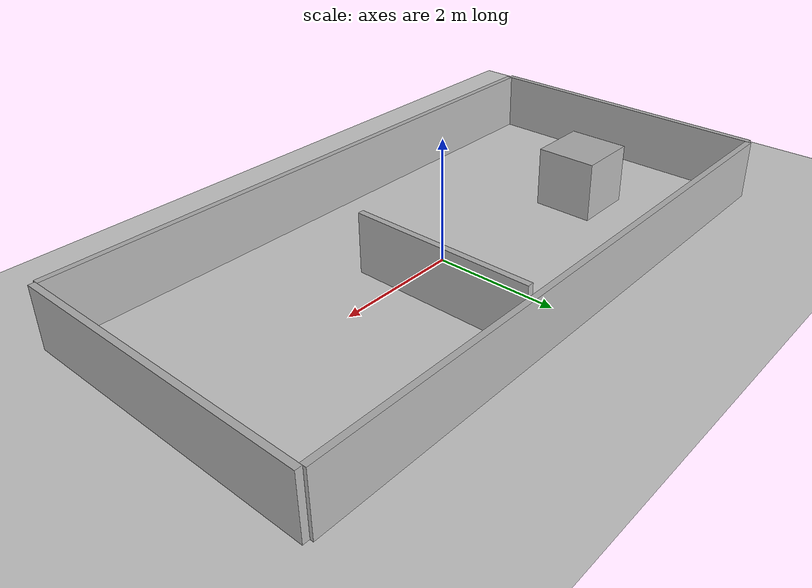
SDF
<sdf version='1.10'>
  <world name='empty'>
    <physics name='1ms' type='ignored'>
      <max_step_size>0.001</max_step_size>
      <real_time_factor>1</real_time_factor>
      <real_time_update_rate>1000</real_time_update_rate>
    </physics>
    <plugin name='gz::sim::systems::Physics' filename='gz-sim-physics-system'/>
    <plugin name='gz::sim::systems::UserCommands' filename='gz-sim-user-commands-system'/>
    <plugin name='gz::sim::systems::SceneBroadcaster' filename='gz-sim-scene-broadcaster-system'/>
    <plugin name='gz::sim::systems::Contact' filename='gz-sim-contact-system'/>
    <gravity>0 0 -9.8000000000000007</gravity>
    <magnetic_field>5.5644999999999998e-06 2.2875799999999999e-05 -4.2388400000000002e-05</magnetic_field>
    <atmosphere type='adiabatic'/>
    <scene>
      <ambient>0.400000006 0.400000006 0.400000006 1</ambient>
      <background>0.699999988 0.699999988 0.699999988 1</background>
      <shadows>true</shadows>
    </scene>
    <model name='ground_plane'>
      <static>true</static>
      <link name='link'>
        <collision name='collision'>
          <geometry>
            <plane>
              <normal>0 0 1</normal>
              <size>100 100</size>
            </plane>
          </geometry>
          <surface>
            <friction>
              <ode/>
            </friction>
            <bounce/>
            <contact/>
          </surface>
        </collision>
        <visual name='visual'>
          <geometry>
            <plane>
              <normal>0 0 1</normal>
              <size>100 100</size>
            </plane>
          </geometry>
          <material>
            <ambient>0.800000012 0.800000012 0.800000012 1</ambient>
            <diffuse>0.800000012 0.800000012 0.800000012 1</diffuse>
            <specular>0.800000012 0.800000012 0.800000012 1</specular>
          </material>
        </visual>
        <pose>0 0 0 0 0 0</pose>
        <inertial>
          <pose>0 0 0 0 0 0</pose>
          <mass>1</mass>
          <inertia>
            <ixx>1</ixx>
            <ixy>0</ixy>
            <ixz>0</ixz>
            <iyy>1</iyy>
            <iyz>0</iyz>
            <izz>1</izz>
          </inertia>
        </inertial>
        <enable_wind>false</enable_wind>
      </link>
      <pose>0 0 0 0 0 0</pose>
      <self_collide>false</self_collide>
    </model>
    <model name='box'>
      <pose>5.0500000000010461 2.2053114041676303e-16 0.49999990563458024 9.230017262243982e-16 2.26868419109952e-12 -4.4742359625154709e-17</pose>
      <link name='box_link'>
        <inertial>
          <inertia>
            <ixx>0.16666</ixx>
            <ixy>0</ixy>
            <ixz>0</ixz>
            <iyy>0.16666</iyy>
            <iyz>0</iyz>
            <izz>0.16666</izz>
          </inertia>
          <mass>1</mass>
          <pose>0 0 0 0 0 0</pose>
        </inertial>
        <collision name='box_collision'>
          <geometry>
            <box>
              <size>0.10000000000000001 5 1</size>
            </box>
          </geometry>
          <surface>
            <friction>
              <ode/>
            </friction>
            <bounce/>
            <contact/>
          </surface>
        </collision>
        <visual name='box_visual'>
          <geometry>
            <box>
              <size>0.10000000000000001 5 1</size>
            </box>
          </geometry>
          <material>
            <ambient>0.300000012 0.300000012 0.300000012 1</ambient>
            <diffuse>0.699999988 0.699999988 0.699999988 1</diffuse>
            <specular>1 1 1 1</specular>
          </material>
        </visual>
        <pose>0 0 0 0 0 0</pose>
        <enable_wind>false</enable_wind>
      </link>
      <static>false</static>
      <self_collide>false</self_collide>
    </model>
    <model name='box_0'>
      <pose>-5.0500000000010257 1.9308619367183795e-16 0.4999999056345818 -1.312018680210056e-16 -2.2350246798462131e-12 -5.2412035890119499e-17</pose>
      <link name='box_link'>
        <inertial>
          <inertia>
            <ixx>0.16666</ixx>
            <ixy>0</ixy>
            <ixz>0</ixz>
            <iyy>0.16666</iyy>
            <iyz>0</iyz>
            <izz>0.16666</izz>
          </inertia>
          <mass>1</mass>
          <pose>0 0 0 0 0 0</pose>
        </inertial>
        <collision name='box_collision'>
          <geometry>
            <box>
              <size>0.10000000000000001 5 1</size>
            </box>
          </geometry>
          <surface>
            <friction>
              <ode/>
            </friction>
            <bounce/>
            <contact/>
          </surface>
        </collision>
        <visual name='box_visual'>
          <geometry>
            <box>
              <size>0.10000000000000001 5 1</size>
            </box>
          </geometry>
          <material>
            <ambient>0.300000012 0.300000012 0.300000012 1</ambient>
            <diffuse>0.699999988 0.699999988 0.699999988 1</diffuse>
            <specular>1 1 1 1</specular>
          </material>
        </visual>
        <pose>0 0 0 0 0 0</pose>
        <enable_wind>false</enable_wind>
      </link>
      <static>false</static>
      <self_collide>false</self_collide>
    </model>
    <model name='box_1'>
      <pose>-4.4394350890997407e-16 2.5026397133030489 0.4999996299985689 -2.2515448170908902e-12 -4.2425859993624924e-15 9.857753932318488e-16</pose>
      <link name='box_link'>
        <inertial>
          <inertia>
            <ixx>0.16666</ixx>
            <ixy>0</ixy>
            <ixz>0</ixz>
            <iyy>0.16666</iyy>
            <iyz>0</iyz>
            <izz>0.16666</izz>
          </inertia>
          <mass>1</mass>
          <pose>0 0 0 0 0 0</pose>
        </inertial>
        <collision name='box_collision'>
          <geometry>
            <box>
              <size>10 0.10000000000000001 1</size>
            </box>
          </geometry>
          <surface>
            <friction>
              <ode/>
            </friction>
            <bounce/>
            <contact/>
          </surface>
        </collision>
        <visual name='box_visual'>
          <geometry>
            <box>
              <size>10 0.10000000000000001 1</size>
            </box>
          </geometry>
          <material>
            <ambient>0.300000012 0.300000012 0.300000012 1</ambient>
            <diffuse>0.699999988 0.699999988 0.699999988 1</diffuse>
            <specular>1 1 1 1</specular>
          </material>
        </visual>
        <pose>0 0 0 0 0 0</pose>
        <enable_wind>false</enable_wind>
      </link>
      <static>false</static>
      <self_collide>false</self_collide>
    </model>
    <model name='box_2'>
      <pose>-3.5634285165011288e-15 -2.4999999691828663 0.49999962999856973 2.2468082769864908e-12 -1.045901579742635e-14 -7.6925547148385442e-17</pose>
      <link name='box_link'>
        <inertial>
          <inertia>
            <ixx>0.16666</ixx>
            <ixy>0</ixy>
            <ixz>0</ixz>
            <iyy>0.16666</iyy>
            <iyz>0</iyz>
            <izz>0.16666</izz>
          </inertia>
          <mass>1</mass>
          <pose>0 0 0 0 0 0</pose>
        </inertial>
        <collision name='box_collision'>
          <geometry>
            <box>
              <size>10 0.10000000000000001 1</size>
            </box>
          </geometry>
          <surface>
            <friction>
              <ode/>
            </friction>
            <bounce/>
            <contact/>
          </surface>
        </collision>
        <visual name='box_visual'>
          <geometry>
            <box>
              <size>10 0.10000000000000001 1</size>
            </box>
          </geometry>
          <material>
            <ambient>0.300000012 0.300000012 0.300000012 1</ambient>
            <diffuse>0.699999988 0.699999988 0.699999988 1</diffuse>
            <specular>1 1 1 1</specular>
          </material>
        </visual>
        <pose>0 0 0 0 0 0</pose>
        <enable_wind>false</enable_wind>
      </link>
      <static>false</static>
      <self_collide>false</self_collide>
    </model>
    <model name='box_3'>
      <pose>1.0033799999999995 0.80100599999999988 0.50358799999999992 -0.0023930000000000006 0 0.0022590000000000019</pose>
      <link name='box_link'>
        <inertial>
          <inertia>
            <ixx>0.16666</ixx>
            <ixy>0</ixy>
            <ixz>0</ixz>
            <iyy>0.16666</iyy>
            <iyz>0</iyz>
            <izz>0.16666</izz>
          </inertia>
          <mass>1</mass>
          <pose>0 0 0 0 0 0</pose>
        </inertial>
        <collision name='box_collision'>
          <geometry>
            <box>
              <size>0.10000000000000001 3 1</size>
            </box>
          </geometry>
          <surface>
            <friction>
              <ode/>
            </friction>
            <bounce/>
            <contact/>
          </surface>
        </collision>
        <visual name='box_visual'>
          <geometry>
            <box>
              <size>0.10000000000000001 3 1</size>
            </box>
          </geometry>
          <material>
            <ambient>0.300000012 0.300000012 0.300000012 1</ambient>
            <diffuse>0.699999988 0.699999988 0.699999988 1</diffuse>
            <specular>1 1 1 1</specular>
          </material>
        </visual>
        <pose>0 0 0 0 0 0</pose>
        <enable_wind>false</enable_wind>
      </link>
      <static>false</static>
      <self_collide>false</self_collide>
    </model>
    <model name='box_4'>
      <pose>-3 0.5 0.49999999019962754 2.7505600788614592e-17 -2.7440033695916435e-17 6.4306385135683611e-19</pose>
      <link name='box_link'>
        <inertial>
          <inertia>
            <ixx>0.16666</ixx>
            <ixy>0</ixy>
            <ixz>0</ixz>
            <iyy>0.16666</iyy>
            <iyz>0</iyz>
            <izz>0.16666</izz>
          </inertia>
          <mass>1</mass>
          <pose>0 0 0 0 0 0</pose>
        </inertial>
        <collision name='box_collision'>
          <geometry>
            <box>
              <size>1 1 1</size>
            </box>
          </geometry>
          <surface>
            <friction>
              <ode/>
            </friction>
            <bounce/>
            <contact/>
          </surface>
        </collision>
        <visual name='box_visual'>
          <geometry>
            <box>
              <size>1 1 1</size>
            </box>
          </geometry>
          <material>
            <ambient>0.300000012 0.300000012 0.300000012 1</ambient>
            <diffuse>0.699999988 0.699999988 0.699999988 1</diffuse>
            <specular>1 1 1 1</specular>
          </material>
        </visual>
        <pose>0 0 0 0 0 0</pose>
        <enable_wind>false</enable_wind>
      </link>
      <static>false</static>
      <self_collide>false</self_collide>
    </model>
    <light name='sun' type='directional'>
      <pose>0 0 10 0 0 0</pose>
      <cast_shadows>true</cast_shadows>
      <intensity>1</intensity>
      <direction>-0.5 0.10000000000000001 -0.90000000000000002</direction>
      <diffuse>0.800000012 0.800000012 0.800000012 1</diffuse>
      <specular>0.200000003 0.200000003 0.200000003 1</specular>
      <attenuation>
        <range>1000</range>
        <linear>0.01</linear>
        <constant>0.90000000000000002</constant>
        <quadratic>0.001</quadratic>
      </attenuation>
      <spot>
        <inner_angle>0</inner_angle>
        <outer_angle>0</outer_angle>
        <falloff>0</falloff>
      </spot>
    </light>
  </world>
</sdf>
